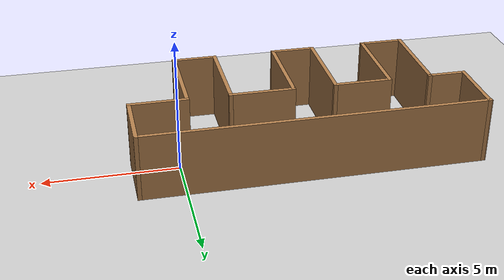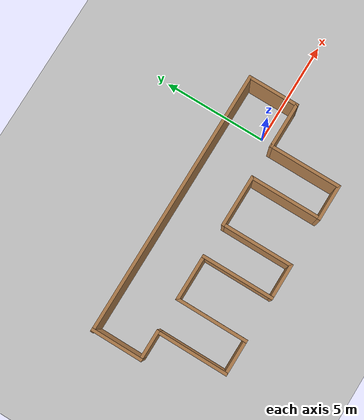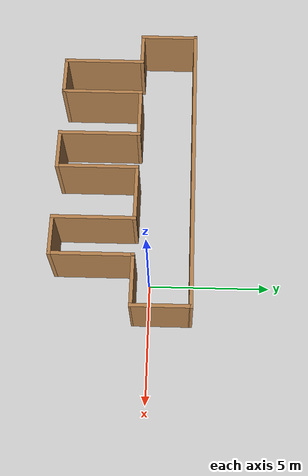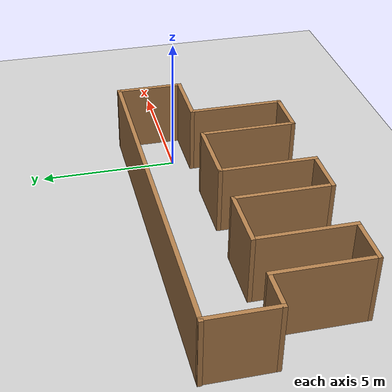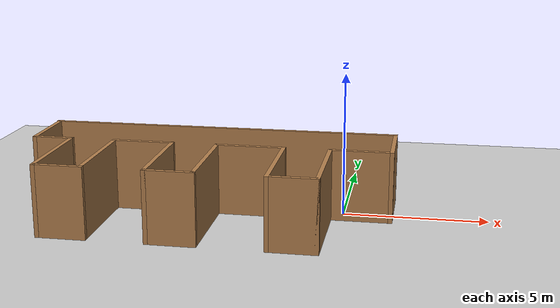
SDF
<sdf version="1.6">
 <world name="default">
  <light name="sun" type="directional">
   <pose>0 0 10 0 -0 0</pose>
   <diffuse>0.8 0.8 0.8 1</diffuse>
   <specular>0.2 0.2 0.2 1</specular>
   <attenuation>
    <range>1000</range>
    <constant>0.9</constant>
    <linear>0.01</linear>
    <quadratic>0.001</quadratic>
   </attenuation>
   <direction>-0.5 0.1 -0.9</direction>
  </light>
  <model name="ground_plane">
   <static>1</static>
   <link name="link">
    <collision name="collision">
     <geometry><plane><normal>0 0 1</normal><size>100 100</size></plane></geometry>
     <surface>
      <contact><collide_bitmask>65535</collide_bitmask></contact>
      <friction><ode><mu>100</mu><mu2>50</mu2></ode></friction>
     </surface>
    </collision>
    <visual name="visual">
     <cast_shadows>0</cast_shadows>
     <geometry><plane><normal>0 0 1</normal><size>100 100</size></plane></geometry>
     <material>
      <script><uri>file://media/materials/scripts/gazebo.material</uri><name>Gazebo/Grey</name></script>
     </material>
    </visual>
   </link>
  </model>
  <gravity>0 0 -9.8</gravity>
  <magnetic_field>6e-06 2.3e-05 -4.2e-05</magnetic_field>
  <atmosphere type="adiabatic"/>
  <physics name="default_physics" default="0" type="ode">
   <max_step_size>0.001</max_step_size>
   <real_time_factor>1</real_time_factor>
   <real_time_update_rate>1000</real_time_update_rate>
  </physics>
  <scene><ambient>0.4 0.4 0.4 1</ambient><background>0.7 0.7 0.7 1</background><shadows>1</shadows></scene>
  <spherical_coordinates>
   <surface_model>EARTH_WGS84</surface_model>
   <latitude_deg>0</latitude_deg>
   <longitude_deg>0</longitude_deg>
   <elevation>0</elevation>
   <heading_deg>0</heading_deg>
  </spherical_coordinates>
  <model name="badr_simple8_0">
   <pose>-4.70283 -1.12211 0 0 -0 0</pose>
   <link name="Wall_32">
    <collision name="Wall_32_Collision">
     <geometry><box><size>12.883 0.15 2.5</size></box></geometry>
     <pose>0 0 1.25 0 -0 0</pose>
    </collision>
    <visual name="Wall_32_Visual">
     <pose>0 0 1.25 0 -0 0</pose>
     <geometry><box><size>12.883 0.15 2.5</size></box></geometry>
     <material>
      <script><uri>file://media/materials/scripts/gazebo.material</uri><name>Gazebo/Wood</name></script>
      <ambient>1 1 1 1</ambient>
     </material>
     <meta><layer>0</layer></meta>
    </visual>
    <pose>-6e-06 2.84992 0 0 -0 0</pose>
   </link>
   <link name="Wall_33">
    <collision name="Wall_33_Collision">
     <geometry><box><size>2.5 0.15 2.5</size></box></geometry>
     <pose>0 0 1.25 0 -0 0</pose>
    </collision>
    <visual name="Wall_33_Visual">
     <pose>0 0 1.25 0 -0 0</pose>
     <geometry><box><size>2.5 0.15 2.5</size></box></geometry>
     <material>
      <script><uri>file://media/materials/scripts/gazebo.material</uri><name>Gazebo/Wood</name></script>
      <ambient>1 1 1 1</ambient>
     </material>
     <meta><layer>0</layer></meta>
    </visual>
    <pose>6.36632 1.67496 0 0 0 -1.57095</pose>
   </link>
   <link name="Wall_34">
    <collision name="Wall_34_Collision">
     <geometry><box><size>2.25 0.15 2.5</size></box></geometry>
     <pose>0 0 1.25 0 -0 0</pose>
    </collision>
    <visual name="Wall_34_Visual">
     <pose>0 0 1.25 0 -0 0</pose>
     <geometry><box><size>2.25 0.15 2.5</size></box></geometry>
     <material>
      <script><uri>file://media/materials/scripts/gazebo.material</uri><name>Gazebo/Wood</name></script>
      <ambient>1 1 1 1</ambient>
     </material>
     <meta><layer>0</layer></meta>
    </visual>
    <pose>5.31614 0.5 0 0 -0 3.14159</pose>
   </link>
   <link name="Wall_35">
    <collision name="Wall_35_Collision">
     <geometry><box><size>3.5 0.15 2.5</size></box></geometry>
     <pose>0 0 1.25 0 -0 0</pose>
    </collision>
    <visual name="Wall_35_Visual">
     <pose>0 0 1.25 0 -0 0</pose>
     <geometry><box><size>3.5 0.15 2.5</size></box></geometry>
     <material>
      <script><uri>file://media/materials/scripts/gazebo.material</uri><name>Gazebo/Wood</name></script>
      <ambient>1 1 1 1</ambient>
     </material>
     <meta><layer>0</layer></meta>
    </visual>
    <pose>4.26614 -1.175 0 0 0 -1.5708</pose>
   </link>
   <link name="Wall_36">
    <collision name="Wall_36_Collision">
     <geometry><box><size>1.75 0.15 2.5</size></box></geometry>
     <pose>0 0 1.25 0 -0 0</pose>
    </collision>
    <visual name="Wall_36_Visual">
     <pose>0 0 1.25 0 -0 0</pose>
     <geometry><box><size>1.75 0.15 2.5</size></box></geometry>
     <material>
      <script><uri>file://media/materials/scripts/gazebo.material</uri><name>Gazebo/Wood</name></script>
      <ambient>1 1 1 1</ambient>
     </material>
     <meta><layer>0</layer></meta>
    </visual>
    <pose>3.46614 -2.85 0 0 -0 3.14159</pose>
   </link>
   <link name="Wall_37">
    <collision name="Wall_37_Collision">
     <geometry><box><size>3.5 0.15 2.5</size></box></geometry>
     <pose>0 0 1.25 0 -0 0</pose>
    </collision>
    <visual name="Wall_37_Visual">
     <pose>0 0 1.25 0 -0 0</pose>
     <geometry><box><size>3.5 0.15 2.5</size></box></geometry>
     <material>
      <script><uri>file://media/materials/scripts/gazebo.material</uri><name>Gazebo/Wood</name></script>
      <ambient>1 1 1 1</ambient>
     </material>
     <meta><layer>0</layer></meta>
    </visual>
    <pose>2.66614 -1.175 0 0 -0 1.5708</pose>
   </link>
   <link name="Wall_38">
    <collision name="Wall_38_Collision">
     <geometry><box><size>2.5 0.15 2.5</size></box></geometry>
     <pose>0 0 1.25 0 -0 0</pose>
    </collision>
    <visual name="Wall_38_Visual">
     <pose>0 0 1.25 0 -0 0</pose>
     <geometry><box><size>2.5 0.15 2.5</size></box></geometry>
     <material>
      <script><uri>file://media/materials/scripts/gazebo.material</uri><name>Gazebo/Wood</name></script>
      <ambient>1 1 1 1</ambient>
     </material>
     <meta><layer>0</layer></meta>
    </visual>
    <pose>1.49114 0.5 0 0 -0 3.14159</pose>
   </link>
   <link name="Wall_39">
    <collision name="Wall_39_Collision">
     <geometry><box><size>3.5 0.15 2.5</size></box></geometry>
     <pose>0 0 1.25 0 -0 0</pose>
    </collision>
    <visual name="Wall_39_Visual">
     <pose>0 0 1.25 0 -0 0</pose>
     <geometry><box><size>3.5 0.15 2.5</size></box></geometry>
     <material>
      <script><uri>file://media/materials/scripts/gazebo.material</uri><name>Gazebo/Wood</name></script>
      <ambient>1 1 1 1</ambient>
     </material>
     <meta><layer>0</layer></meta>
    </visual>
    <pose>0.316142 -1.175 0 0 0 -1.5708</pose>
   </link>
   <link name="Wall_40">
    <collision name="Wall_40_Collision">
     <geometry><box><size>1.75 0.15 2.5</size></box></geometry>
     <pose>0 0 1.25 0 -0 0</pose>
    </collision>
    <visual name="Wall_40_Visual">
     <pose>0 0 1.25 0 -0 0</pose>
     <geometry><box><size>1.75 0.15 2.5</size></box></geometry>
     <material>
      <script><uri>file://media/materials/scripts/gazebo.material</uri><name>Gazebo/Wood</name></script>
      <ambient>1 1 1 1</ambient>
     </material>
     <meta><layer>0</layer></meta>
    </visual>
    <pose>-0.483858 -2.85 0 0 -0 3.14159</pose>
   </link>
   <link name="Wall_41">
    <collision name="Wall_41_Collision">
     <geometry><box><size>3.5 0.15 2.5</size></box></geometry>
     <pose>0 0 1.25 0 -0 0</pose>
    </collision>
    <visual name="Wall_41_Visual">
     <pose>0 0 1.25 0 -0 0</pose>
     <geometry><box><size>3.5 0.15 2.5</size></box></geometry>
     <material>
      <script><uri>file://media/materials/scripts/gazebo.material</uri><name>Gazebo/Wood</name></script>
      <ambient>1 1 1 1</ambient>
     </material>
     <meta><layer>0</layer></meta>
    </visual>
    <pose>-1.28386 -1.175 0 0 -0 1.5708</pose>
   </link>
   <link name="Wall_42">
    <collision name="Wall_42_Collision">
     <geometry><box><size>2.25 0.15 2.5</size></box></geometry>
     <pose>0 0 1.25 0 -0 0</pose>
    </collision>
    <visual name="Wall_42_Visual">
     <pose>0 0 1.25 0 -0 0</pose>
     <geometry><box><size>2.25 0.15 2.5</size></box></geometry>
     <material>
      <script><uri>file://media/materials/scripts/gazebo.material</uri><name>Gazebo/Wood</name></script>
      <ambient>1 1 1 1</ambient>
     </material>
     <meta><layer>0</layer></meta>
    </visual>
    <pose>-2.33386 0.5 0 0 -0 3.14159</pose>
   </link>
   <link name="Wall_43">
    <collision name="Wall_43_Collision">
     <geometry><box><size>3.5 0.15 2.5</size></box></geometry>
     <pose>0 0 1.25 0 -0 0</pose>
    </collision>
    <visual name="Wall_43_Visual">
     <pose>0 0 1.25 0 -0 0</pose>
     <geometry><box><size>3.5 0.15 2.5</size></box></geometry>
     <material>
      <script><uri>file://media/materials/scripts/gazebo.material</uri><name>Gazebo/Wood</name></script>
      <ambient>1 1 1 1</ambient>
     </material>
     <meta><layer>0</layer></meta>
    </visual>
    <pose>-3.38386 -1.175 0 0 0 -1.5708</pose>
   </link>
   <link name="Wall_44">
    <collision name="Wall_44_Collision">
     <geometry><box><size>1.75 0.15 2.5</size></box></geometry>
     <pose>0 0 1.25 0 -0 0</pose>
    </collision>
    <visual name="Wall_44_Visual">
     <pose>0 0 1.25 0 -0 0</pose>
     <geometry><box><size>1.75 0.15 2.5</size></box></geometry>
     <material>
      <script><uri>file://media/materials/scripts/gazebo.material</uri><name>Gazebo/Wood</name></script>
      <ambient>1 1 1 1</ambient>
     </material>
     <meta><layer>0</layer></meta>
    </visual>
    <pose>-4.18386 -2.85 0 0 -0 3.14159</pose>
   </link>
   <link name="Wall_45">
    <collision name="Wall_45_Collision">
     <geometry><box><size>3.5 0.15 2.5</size></box></geometry>
     <pose>0 0 1.25 0 -0 0</pose>
    </collision>
    <visual name="Wall_45_Visual">
     <pose>0 0 1.25 0 -0 0</pose>
     <geometry><box><size>3.5 0.15 2.5</size></box></geometry>
     <material>
      <script><uri>file://media/materials/scripts/gazebo.material</uri><name>Gazebo/Wood</name></script>
      <ambient>1 1 1 1</ambient>
     </material>
     <meta><layer>0</layer></meta>
    </visual>
    <pose>-4.98386 -1.175 0 0 -0 1.5708</pose>
   </link>
   <link name="Wall_46">
    <collision name="Wall_46_Collision">
     <geometry><box><size>1.5 0.15 2.5</size></box></geometry>
     <pose>0 0 1.25 0 -0 0</pose>
    </collision>
    <visual name="Wall_46_Visual">
     <pose>0 0 1.25 0 -0 0</pose>
     <geometry><box><size>1.5 0.15 2.5</size></box></geometry>
     <material>
      <script><uri>file://media/materials/scripts/gazebo.material</uri><name>Gazebo/Wood</name></script>
      <ambient>1 1 1 1</ambient>
     </material>
     <meta><layer>0</layer></meta>
    </visual>
    <pose>-5.65886 0.5 0 0 -0 3.14159</pose>
   </link>
   <link name="Wall_47">
    <collision name="Wall_47_Collision">
     <geometry><box><size>2.5 0.15 2.5</size></box></geometry>
     <pose>0 0 1.25 0 -0 0</pose>
    </collision>
    <visual name="Wall_47_Visual">
     <pose>0 0 1.25 0 -0 0</pose>
     <geometry><box><size>2.5 0.15 2.5</size></box></geometry>
     <material>
      <script><uri>file://media/materials/scripts/gazebo.material</uri><name>Gazebo/Wood</name></script>
      <ambient>1 1 1 1</ambient>
     </material>
     <meta><layer>0</layer></meta>
    </visual>
    <pose>-6.33386 1.675 0 0 -0 1.5708</pose>
   </link>
   <static>1</static>
  </model>
 </world>
</sdf>
